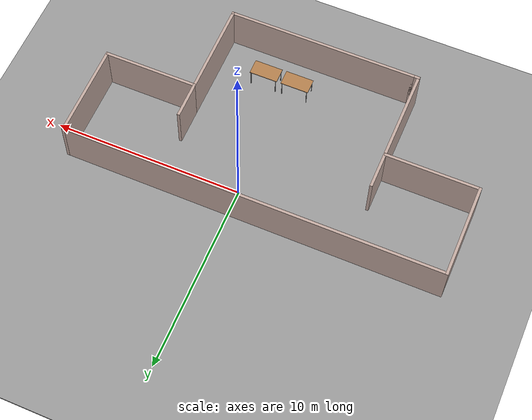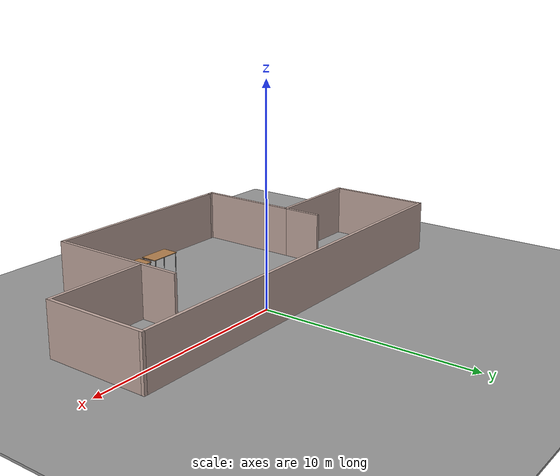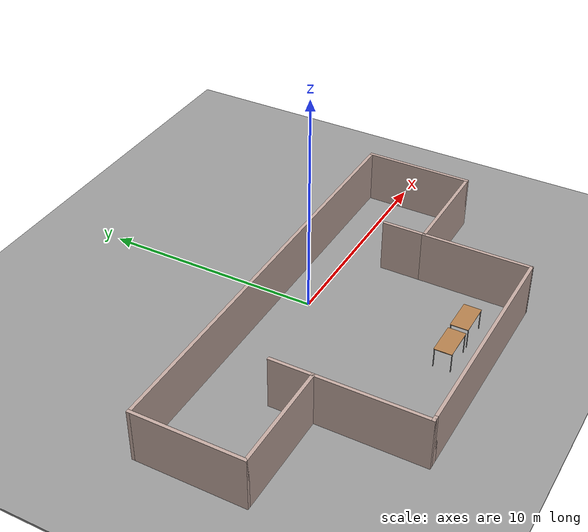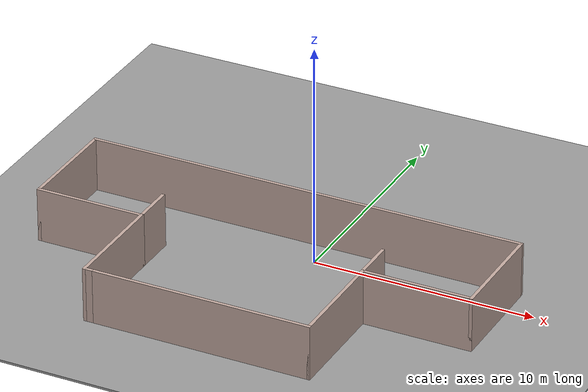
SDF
<sdf version="1.7">
 <world name="default">
  <light name="sun" type="directional">
   <pose>0 0 10 0 -0 0</pose>
   <diffuse>0.8 0.8 0.8 1</diffuse>
   <specular>0.2 0.2 0.2 1</specular>
   <attenuation>
    <range>1000</range>
    <constant>0.9</constant>
    <linear>0.01</linear>
    <quadratic>0.001</quadratic>
   </attenuation>
   <direction>-0.5 0.1 -0.9</direction>
   <spot><inner_angle>0</inner_angle><outer_angle>0</outer_angle><falloff>0</falloff></spot>
  </light>
  <model name="ground_plane">
   <static>1</static>
   <link name="link">
    <collision name="collision">
     <geometry><plane><normal>0 0 1</normal><size>100 100</size></plane></geometry>
     <surface>
      <contact><collide_bitmask>65535</collide_bitmask></contact>
      <friction><ode><mu>100</mu><mu2>50</mu2></ode></friction>
     </surface>
    </collision>
    <visual name="visual">
     <cast_shadows>0</cast_shadows>
     <geometry><plane><normal>0 0 1</normal><size>100 100</size></plane></geometry>
     <material>
      <script><uri>file://media/materials/scripts/gazebo.material</uri><name>Gazebo/Grey</name></script>
     </material>
    </visual>
   </link>
  </model>
  <gravity>0 0 -9.8</gravity>
  <magnetic_field>6e-06 2.3e-05 -4.2e-05</magnetic_field>
  <atmosphere type="adiabatic"/>
  <physics type="ode">
   <max_step_size>0.001</max_step_size>
   <real_time_factor>1</real_time_factor>
   <real_time_update_rate>1000</real_time_update_rate>
  </physics>
  <scene><ambient>0.4 0.4 0.4 1</ambient><background>0.7 0.7 0.7 1</background><shadows>1</shadows></scene>
  <spherical_coordinates>
   <surface_model>EARTH_WGS84</surface_model>
   <latitude_deg>0</latitude_deg>
   <longitude_deg>0</longitude_deg>
   <elevation>0</elevation>
   <heading_deg>0</heading_deg>
  </spherical_coordinates>
  <model name="world2">
   <pose>-1.14342 -3.52801 0 0 -0 0</pose>
   <link name="Wall_10">
    <collision name="Wall_10_Collision">
     <geometry><box><size>5 0.15 2.5</size></box></geometry>
     <pose>0 0 1.25 0 -0 0</pose>
    </collision>
    <visual name="Wall_10_Visual">
     <pose>0 0 1.25 0 -0 0</pose>
     <geometry><box><size>5 0.15 2.5</size></box></geometry>
     <material>
      <script><uri>file://media/materials/scripts/gazebo.material</uri><name>Gazebo/Grey</name></script>
      <ambient>0.760784 0.662745 0.627451 1</ambient>
     </material>
     <meta><layer>0</layer></meta>
    </visual>
    <pose>-7.5 0 0 0 -0 0</pose>
   </link>
   <link name="Wall_13">
    <collision name="Wall_13_Collision">
     <geometry><box><size>5 0.15 2.5</size></box></geometry>
     <pose>0 0 1.25 0 -0 0</pose>
    </collision>
    <visual name="Wall_13_Visual">
     <pose>0 0 1.25 0 -0 0</pose>
     <geometry><box><size>5 0.15 2.5</size></box></geometry>
     <material>
      <script><uri>file://media/materials/scripts/gazebo.material</uri><name>Gazebo/Grey</name></script>
      <ambient>0.760784 0.662745 0.627451 1</ambient>
     </material>
     <meta><layer>0</layer></meta>
    </visual>
    <pose>-5.075 -2.425 0 0 -0 -1.5708</pose>
   </link>
   <link name="Wall_14">
    <collision name="Wall_14_Collision">
     <geometry><box><size>0.45 0.15 2.5</size></box></geometry>
     <pose>0 0 1.25 0 -0 0</pose>
    </collision>
    <visual name="Wall_14_Visual">
     <pose>0 0 1.25 0 -0 0</pose>
     <geometry><box><size>0.45 0.15 2.5</size></box></geometry>
     <material>
      <script><uri>file://media/materials/scripts/gazebo.material</uri><name>Gazebo/Grey</name></script>
      <ambient>0.760784 0.662745 0.627451 1</ambient>
     </material>
     <meta><layer>0</layer></meta>
    </visual>
    <pose>-4.925 -4.85 0 0 -0 0</pose>
   </link>
   <link name="Wall_16">
    <collision name="Wall_16_Collision">
     <geometry><box><size>2 0.15 2.5</size></box></geometry>
     <pose>0 0 1.25 0 -0 0</pose>
    </collision>
    <visual name="Wall_16_Visual">
     <pose>0 0 1.25 0 -0 0</pose>
     <geometry><box><size>2 0.15 2.5</size></box></geometry>
     <material>
      <script><uri>file://media/materials/scripts/gazebo.material</uri><name>Gazebo/Grey</name></script>
      <ambient>0.760784 0.662745 0.627451 1</ambient>
     </material>
     <meta><layer>0</layer></meta>
    </visual>
    <pose>-5.075 0.925 0 0 -0 1.5708</pose>
   </link>
   <link name="Wall_18">
    <collision name="Wall_18_Collision">
     <geometry><box><size>2 0.15 2.5</size></box></geometry>
     <pose>0 0 1.25 0 -0 0</pose>
    </collision>
    <visual name="Wall_18_Visual">
     <pose>0 0 1.25 0 -0 0</pose>
     <geometry><box><size>2 0.15 2.5</size></box></geometry>
     <material>
      <script><uri>file://media/materials/scripts/gazebo.material</uri><name>Gazebo/Grey</name></script>
      <ambient>0.760784 0.662745 0.627451 1</ambient>
     </material>
     <meta><layer>0</layer></meta>
    </visual>
    <pose>5.075 0.925 0 0 -0 1.5708</pose>
   </link>
   <link name="Wall_2">
    <collision name="Wall_2_Collision">
     <geometry><box><size>10 0.15 2.5</size></box></geometry>
     <pose>0 0 1.25 0 -0 0</pose>
    </collision>
    <visual name="Wall_2_Visual">
     <pose>0 0 1.25 0 -0 0</pose>
     <geometry><box><size>10 0.15 2.5</size></box></geometry>
     <material>
      <script><uri>file://media/materials/scripts/gazebo.material</uri><name>Gazebo/Grey</name></script>
      <ambient>0.760784 0.662745 0.627451 1</ambient>
     </material>
     <meta><layer>0</layer></meta>
    </visual>
    <pose>0.15 -4.85 0 0 -0 0</pose>
   </link>
   <link name="Wall_3">
    <collision name="Wall_3_Collision">
     <geometry><box><size>5 0.15 2.5</size></box></geometry>
     <pose>0 0 1.25 0 -0 0</pose>
    </collision>
    <visual name="Wall_3_Visual">
     <pose>0 0 1.25 0 -0 0</pose>
     <geometry><box><size>5 0.15 2.5</size></box></geometry>
     <material>
      <script><uri>file://media/materials/scripts/gazebo.material</uri><name>Gazebo/Grey</name></script>
      <ambient>0.760784 0.662745 0.627451 1</ambient>
     </material>
     <meta><layer>0</layer></meta>
    </visual>
    <pose>5.075 -2.425 0 0 -0 1.5708</pose>
   </link>
   <link name="Wall_4">
    <collision name="Wall_4_Collision">
     <geometry><box><size>5 0.15 2.5</size></box></geometry>
     <pose>0 0 1.25 0 -0 0</pose>
    </collision>
    <visual name="Wall_4_Visual">
     <pose>0 0 1.25 0 -0 0</pose>
     <geometry><box><size>5 0.15 2.5</size></box></geometry>
     <material>
      <script><uri>file://media/materials/scripts/gazebo.material</uri><name>Gazebo/Grey</name></script>
      <ambient>0.760784 0.662745 0.627451 1</ambient>
     </material>
     <meta><layer>0</layer></meta>
    </visual>
    <pose>7.5 0 0 0 -0 0</pose>
   </link>
   <link name="Wall_7">
    <collision name="Wall_7_Collision">
     <geometry><box><size>5 0.15 2.5</size></box></geometry>
     <pose>0 0 1.25 0 -0 0</pose>
    </collision>
    <visual name="Wall_7_Visual">
     <pose>0 0 1.25 0 -0 0</pose>
     <geometry><box><size>5 0.15 2.5</size></box></geometry>
     <material>
      <script><uri>file://media/materials/scripts/gazebo.material</uri><name>Gazebo/Grey</name></script>
      <ambient>0.760784 0.662745 0.627451 1</ambient>
     </material>
     <meta><layer>0</layer></meta>
    </visual>
    <pose>9.925 2.425 0 0 -0 1.5708</pose>
   </link>
   <link name="Wall_8">
    <collision name="Wall_8_Collision">
     <geometry><box><size>20 0.15 2.5</size></box></geometry>
     <pose>0 0 1.25 0 -0 0</pose>
    </collision>
    <visual name="Wall_8_Visual">
     <pose>0 0 1.25 0 -0 0</pose>
     <geometry><box><size>20 0.15 2.5</size></box></geometry>
     <material>
      <script><uri>file://media/materials/scripts/gazebo.material</uri><name>Gazebo/Grey</name></script>
      <ambient>0.760784 0.662745 0.627451 1</ambient>
     </material>
     <meta><layer>0</layer></meta>
    </visual>
    <pose>-0 4.85 0 0 -0 3.14159</pose>
   </link>
   <link name="Wall_9">
    <collision name="Wall_9_Collision">
     <geometry><box><size>5 0.15 2.5</size></box></geometry>
     <pose>0 0 1.25 0 -0 0</pose>
    </collision>
    <visual name="Wall_9_Visual">
     <pose>0 0 1.25 0 -0 0</pose>
     <geometry><box><size>5 0.15 2.5</size></box></geometry>
     <material>
      <script><uri>file://media/materials/scripts/gazebo.material</uri><name>Gazebo/Grey</name></script>
      <ambient>0.760784 0.662745 0.627451 1</ambient>
     </material>
     <meta><layer>0</layer></meta>
    </visual>
    <pose>-9.925 2.425 0 0 -0 -1.5708</pose>
   </link>
   <static>1</static>
  </model>
  <model name="ground_plane_0">
   <static>1</static>
   <link name="link">
    <collision name="collision">
     <geometry><plane><normal>0 0 1</normal><size>100 100</size></plane></geometry>
     <surface>
      <contact><collide_bitmask>65535</collide_bitmask></contact>
      <friction><ode><mu>100</mu><mu2>50</mu2></ode></friction>
     </surface>
    </collision>
    <visual name="visual">
     <cast_shadows>0</cast_shadows>
     <geometry><plane><normal>0 0 1</normal><size>100 100</size></plane></geometry>
     <material>
      <script><uri>file://media/materials/scripts/gazebo.material</uri><name>Gazebo/Grey</name></script>
     </material>
    </visual>
   </link>
   <pose>3.07303 -4.24015 0 0 -0 0</pose>
  </model>
  <model name="table">
   <static>1</static>
   <link name="link">
    <collision name="surface">
     <pose>0 0 1 0 -0 0</pose>
     <geometry><box><size>1.5 0.8 0.03</size></box></geometry>
     <surface><friction><ode><mu>0.6</mu><mu2>0.6</mu2></ode></friction></surface>
    </collision>
    <visual name="visual1">
     <pose>0 0 1 0 -0 0</pose>
     <geometry><box><size>1.5 0.8 0.03</size></box></geometry>
     <material>
      <script><uri>file://media/materials/scripts/gazebo.material</uri><name>Gazebo/Wood</name></script>
     </material>
    </visual>
    <collision name="front_left_leg">
     <pose>0.68 0.38 0.5 0 -0 0</pose>
     <geometry><cylinder><radius>0.02</radius><length>1</length></cylinder></geometry>
    </collision>
    <visual name="front_left_leg">
     <pose>0.68 0.38 0.5 0 -0 0</pose>
     <geometry><cylinder><radius>0.02</radius><length>1</length></cylinder></geometry>
     <material>
      <script><uri>file://media/materials/scripts/gazebo.material</uri><name>Gazebo/Grey</name></script>
     </material>
    </visual>
    <collision name="front_right_leg">
     <pose>0.68 -0.38 0.5 0 -0 0</pose>
     <geometry><cylinder><radius>0.02</radius><length>1</length></cylinder></geometry>
    </collision>
    <visual name="front_right_leg">
     <pose>0.68 -0.38 0.5 0 -0 0</pose>
     <geometry><cylinder><radius>0.02</radius><length>1</length></cylinder></geometry>
     <material>
      <script><uri>file://media/materials/scripts/gazebo.material</uri><name>Gazebo/Grey</name></script>
     </material>
    </visual>
    <collision name="back_right_leg">
     <pose>-0.68 -0.38 0.5 0 -0 0</pose>
     <geometry><cylinder><radius>0.02</radius><length>1</length></cylinder></geometry>
    </collision>
    <visual name="back_right_leg">
     <pose>-0.68 -0.38 0.5 0 -0 0</pose>
     <geometry><cylinder><radius>0.02</radius><length>1</length></cylinder></geometry>
     <material>
      <script><uri>file://media/materials/scripts/gazebo.material</uri><name>Gazebo/Grey</name></script>
     </material>
    </visual>
    <collision name="back_left_leg">
     <pose>-0.68 0.38 0.5 0 -0 0</pose>
     <geometry><cylinder><radius>0.02</radius><length>1</length></cylinder></geometry>
    </collision>
    <visual name="back_left_leg">
     <pose>-0.68 0.38 0.5 0 -0 0</pose>
     <geometry><cylinder><radius>0.02</radius><length>1</length></cylinder></geometry>
     <material>
      <script><uri>file://media/materials/scripts/gazebo.material</uri><name>Gazebo/Grey</name></script>
     </material>
    </visual>
   </link>
   <pose>1.33629 -6.66901 0 0 -0 0</pose>
  </model>
  <model name="table_0">
   <static>1</static>
   <link name="link">
    <collision name="surface">
     <pose>0 0 1 0 -0 0</pose>
     <geometry><box><size>1.5 0.8 0.03</size></box></geometry>
     <surface><friction><ode><mu>0.6</mu><mu2>0.6</mu2></ode></friction></surface>
    </collision>
    <visual name="visual1">
     <pose>0 0 1 0 -0 0</pose>
     <geometry><box><size>1.5 0.8 0.03</size></box></geometry>
     <material>
      <script><uri>file://media/materials/scripts/gazebo.material</uri><name>Gazebo/Wood</name></script>
     </material>
    </visual>
    <collision name="front_left_leg">
     <pose>0.68 0.38 0.5 0 -0 0</pose>
     <geometry><cylinder><radius>0.02</radius><length>1</length></cylinder></geometry>
    </collision>
    <visual name="front_left_leg">
     <pose>0.68 0.38 0.5 0 -0 0</pose>
     <geometry><cylinder><radius>0.02</radius><length>1</length></cylinder></geometry>
     <material>
      <script><uri>file://media/materials/scripts/gazebo.material</uri><name>Gazebo/Grey</name></script>
     </material>
    </visual>
    <collision name="front_right_leg">
     <pose>0.68 -0.38 0.5 0 -0 0</pose>
     <geometry><cylinder><radius>0.02</radius><length>1</length></cylinder></geometry>
    </collision>
    <visual name="front_right_leg">
     <pose>0.68 -0.38 0.5 0 -0 0</pose>
     <geometry><cylinder><radius>0.02</radius><length>1</length></cylinder></geometry>
     <material>
      <script><uri>file://media/materials/scripts/gazebo.material</uri><name>Gazebo/Grey</name></script>
     </material>
    </visual>
    <collision name="back_right_leg">
     <pose>-0.68 -0.38 0.5 0 -0 0</pose>
     <geometry><cylinder><radius>0.02</radius><length>1</length></cylinder></geometry>
    </collision>
    <visual name="back_right_leg">
     <pose>-0.68 -0.38 0.5 0 -0 0</pose>
     <geometry><cylinder><radius>0.02</radius><length>1</length></cylinder></geometry>
     <material>
      <script><uri>file://media/materials/scripts/gazebo.material</uri><name>Gazebo/Grey</name></script>
     </material>
    </visual>
    <collision name="back_left_leg">
     <pose>-0.68 0.38 0.5 0 -0 0</pose>
     <geometry><cylinder><radius>0.02</radius><length>1</length></cylinder></geometry>
    </collision>
    <visual name="back_left_leg">
     <pose>-0.68 0.38 0.5 0 -0 0</pose>
     <geometry><cylinder><radius>0.02</radius><length>1</length></cylinder></geometry>
     <material>
      <script><uri>file://media/materials/scripts/gazebo.material</uri><name>Gazebo/Grey</name></script>
     </material>
    </visual>
   </link>
   <pose>-0.385571 -6.676 0 0 -0 0</pose>
  </model>
 </world>
</sdf>
